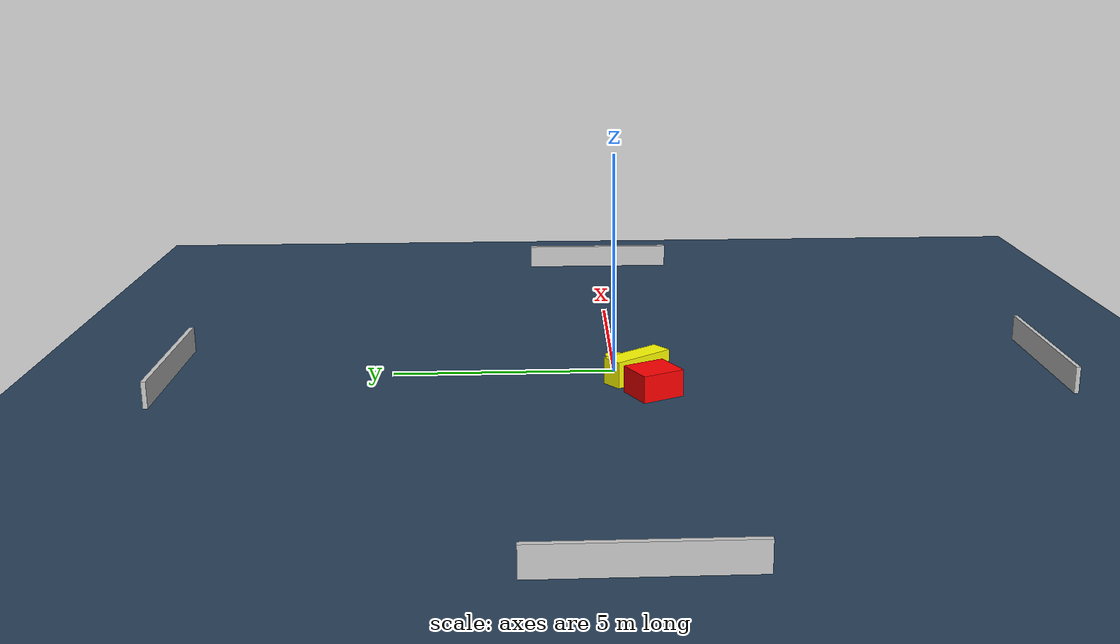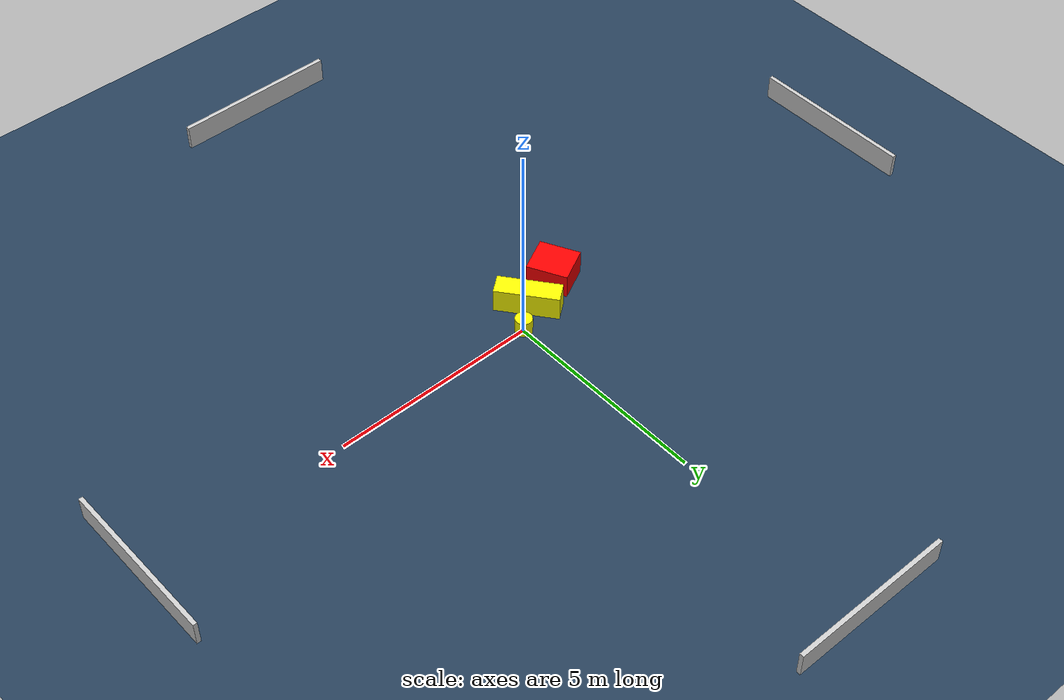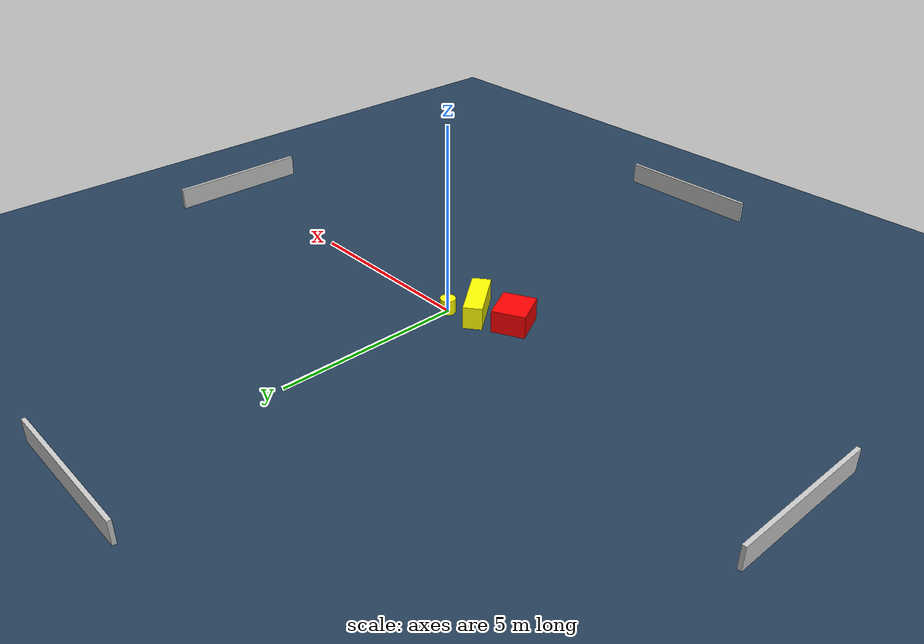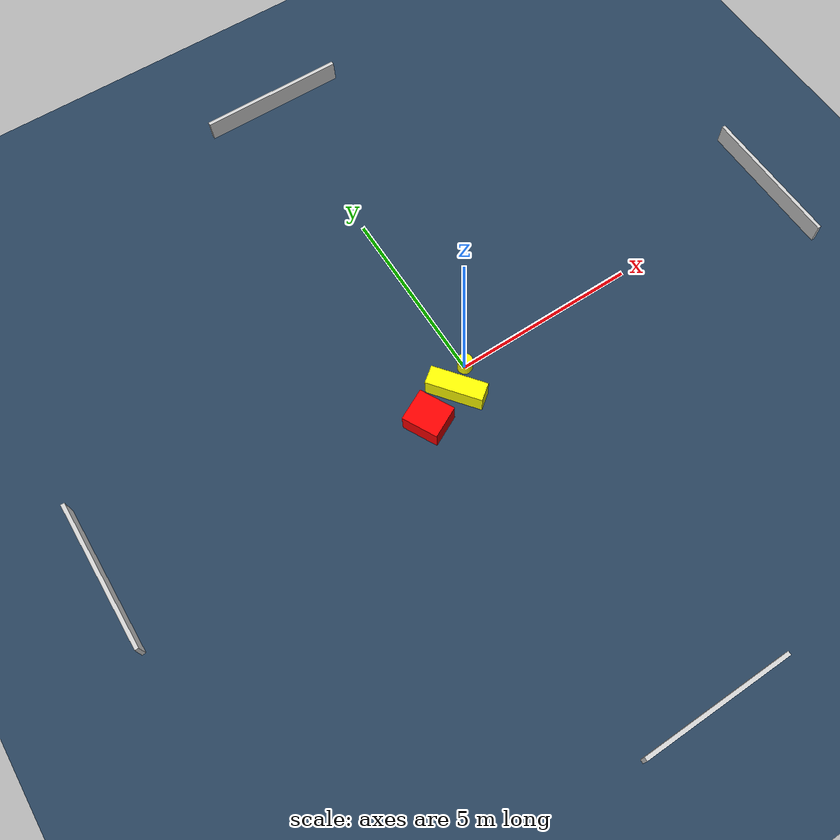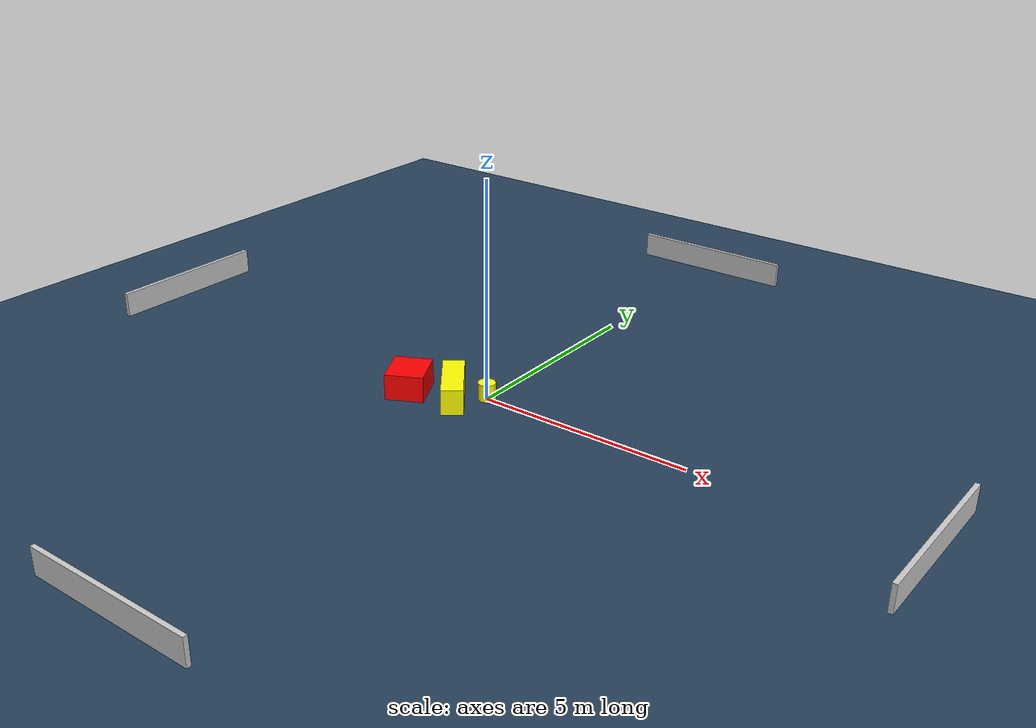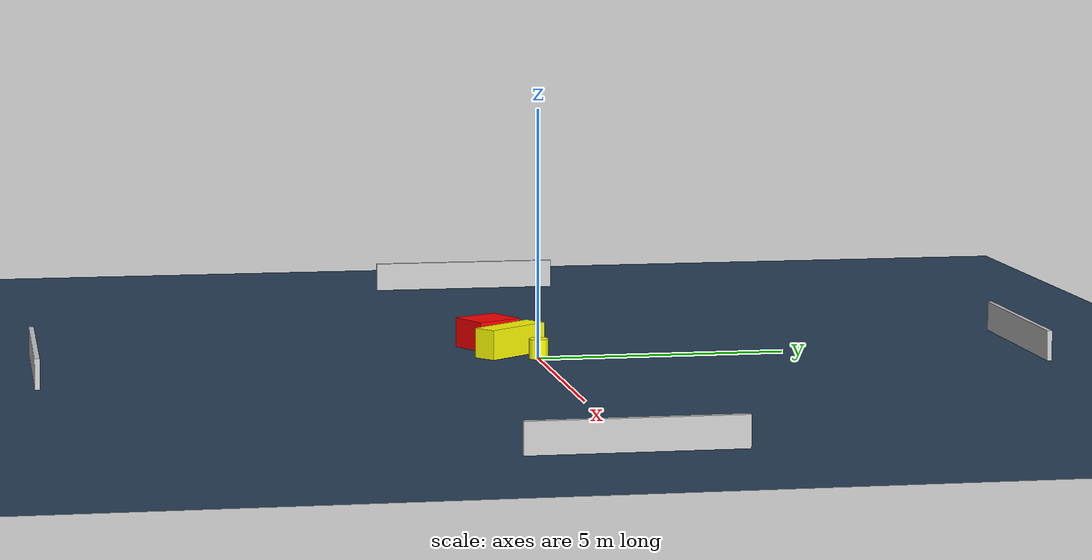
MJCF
<?xml version="1.0" ?>
<mujoco model="generated_environment">
  <option timestep="0.01" integrator="RK4" cone="elliptic"/>
  <default>
    <geom density="1"/>
  </default>
  <asset>
    <texture builtin="gradient" height="3072" name="skybox" rgb1="0.3 0.5 0.7" rgb2="0 0 0" type="skybox" width="512"/>
    <texture builtin="checker" height="300" name="groundplane" rgb1="0.2 0.3 0.4" rgb2="0.1 0.2 0.3" type="2d" width="300"/>
    <material name="groundplane" reflectance="0.2" texrepeat="5 5" texture="groundplane"/>
  </asset>
  <worldbody>
    <light dir="0 0 -1" directional="true" pos="0 0 1.5"/>
    <geom condim="3" friction="0.5 0.005 0.001" material="groundplane" name="floor" pos="0 0 0" size="0 0 0.05" type="plane"/>
    <body name="walls">
      <geom name="wall_1" condim="4" pos="-10.0 0.0 0.3" rgba="0.800000011920929 0.800000011920929 0.800000011920929 1.0" size="0.05 2.0 0.3" type="box"/>
      <geom name="wall_2" condim="4" pos="10.0 0.0 0.3" rgba="0.800000011920929 0.800000011920929 0.800000011920929 1.0" size="0.05 2.0 0.3" type="box"/>
      <geom name="wall_3" condim="4" pos="0.0 -10.0 0.3" rgba="0.800000011920929 0.800000011920929 0.800000011920929 1.0" size="2.0 0.05 0.3" type="box"/>
      <geom name="wall_4" condim="4" pos="0.0 10.0 0.3" rgba="0.800000011920929 0.800000011920929 0.800000011920929 1.0" size="2.0 0.05 0.3" type="box"/>
    </body>
    <body name="robot">
      <joint name="joint_x" type="slide" pos="0 0 0" axis="1 0 0"/>
      <joint name="joint_y" type="slide" pos="0 0 0" axis="0 1 0"/>
      <geom name="robot" type="cylinder" pos="0.0 0.0 0.2" size="0.2 0.2 0.0" mass="5.0" friction="1.0 0.005 0.0001" condim="4" rgba="1.0 1.0 0.0 1.0"/>
    </body>
    <body name="obstacle_1_movable">
      <geom name="obstacle_1_movable" condim="4" pos="-0.5626939696572224 -0.48471889590330886 0.3" euler="0 0 307.794637517343" friction="0.0 0.005 0.001" rgba="1.0 1.0 0.0 1.0" size="0.7524294964819416 0.246381143999245 0.3" type="box" mass="0.1"/>
      <joint type="free"/>
    </body>
    <body name="obstacle_2_static">
      <geom name="obstacle_2_static" condim="4" pos="-1.5826496440005415 -0.7808400332868076 0.3" euler="0 0 27.04831415987885" friction="0.0 0.005 0.001" rgba="1.0 0.0 0.0 1.0" size="0.43718997099840184 0.49099941641926326 0.3" type="box"/>
    </body>
  </worldbody>
  <actuator>
    <motor name="actuator_x" joint="joint_x" gear="1" ctrlrange="-1 1"/>
    <motor name="actuator_y" joint="joint_y" gear="1" ctrlrange="-1 1"/>
  </actuator>
</mujoco>
